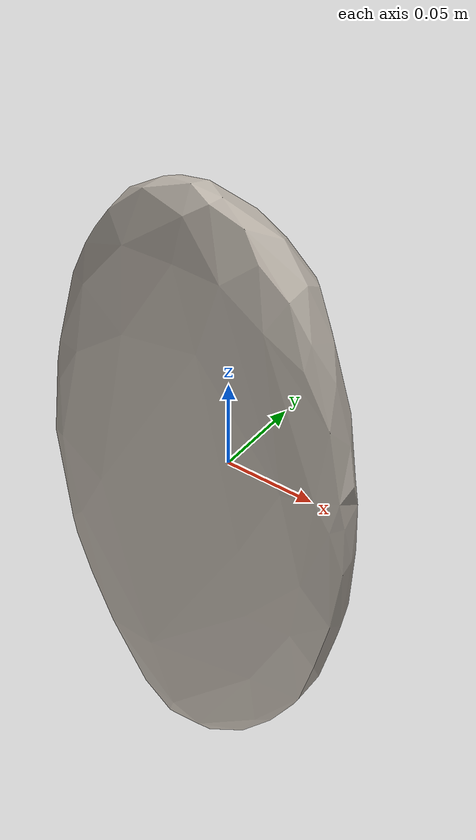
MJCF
<mujoco model="Bread_25">
  <compiler autolimits="true" boundmass="0.01" angle="radian"/>
  <default>
    <default class="/">
      <default class="__VISUAL_MJT__">
        <geom contype="0" conaffinity="0" group="0"/>
      </default>
      <default class="__STRUCTURAL_MJT__">
        <geom contype="8" conaffinity="15" group="4" friction="0.90000000000000002 0.90000000000000002 0.001" solref="0.025000000000000001 1" solimp="0.998 0.998 0.001"/>
      </default>
      <default class="__DYNAMIC_MJT__">
        <geom contype="1" conaffinity="15" group="4" friction="0.90000000000000002 0.90000000000000002 0.001" solref="0.025000000000000001 1" solimp="0.998 0.998 0.001"/>
      </default>
    </default>
  </default>
  <asset>
    <texture name="LoafBread_Mat1" type="2d" file="LoafBread_AlbedoTransparency.png"/>
    <material name="material_LoafBread_Mat1" class="/" texture="LoafBread_Mat1" specular="0.5" shininess="0.5" rgba="1 1 1 1"/>
    <mesh name="Bread_25_loafbread_a_mesh" class="/" file="Bread_25_loafbread_a_mesh/Bread_25_loafbread_a_mesh.obj" scale="1 1 1"/>
  </asset>
  <worldbody>
    <body name="Bread_25">
      <joint name="Bread_25_free" class="/" type="free" pos="0 0 0" axis="0 0 1" stiffness="0" range="0 0" armature="0" damping="0.10000000000000001" frictionloss="0"/>
      <body name="Bread_25_loafbread_a_mesh" pos="-0 0.00014999999999999999 0" quat="1 0 0 0">
        <geom name="Bread_25_loafbread_a_mesh" class="__VISUAL_MJT__" type="mesh" material="material_LoafBread_Mat1" shellinertia="false" mesh="Bread_25_loafbread_a_mesh"/>
        <geom name="Bread_25_PrimitiveCollider_0" class="__DYNAMIC_MJT__" type="box" size="0.06384161114692688 0.031366441398859024 0.1441606730222702" rgba="0 1 0 1" pos="-0 -0.011898133903741837 0" quat="1 0 0 0"/>
        <geom name="Bread_25_PrimitiveCollider_1" class="__DYNAMIC_MJT__" type="box" size="0.049681007862091064 0.022940728813409805 0.17691688239574432" rgba="0 1 0 1" pos="-0 -0.020323846489191055 0" quat="1 0 0 0"/>
        <geom name="Bread_25_PrimitiveCollider_2" class="__DYNAMIC_MJT__" type="capsule" size="0.040940038859844208 0.091528870165348053" rgba="0 1 0 1" pos="-0 0.0020330622792243958 6.0535967350006104e-09" quat="0.99999999999891198 1.4751396607739272e-06 0 0"/>
        <geom name="Bread_25_PrimitiveCollider_3" class="__DYNAMIC_MJT__" type="box" size="0.082261398434638977 0.021852493286132812 0.11893259733915329" rgba="0 1 0 1" pos="-0 -0.017524491995573044 0" quat="1 0 0 0"/>
      </body>
    </body>
  </worldbody>
</mujoco>
